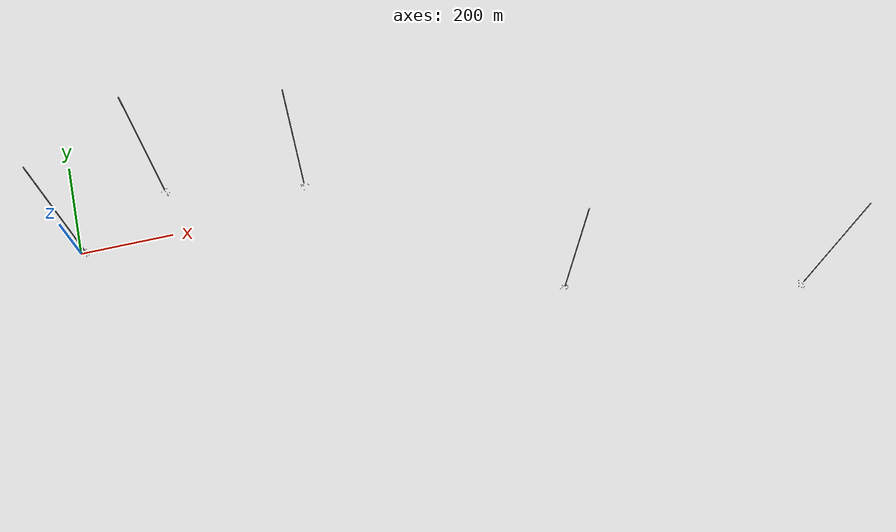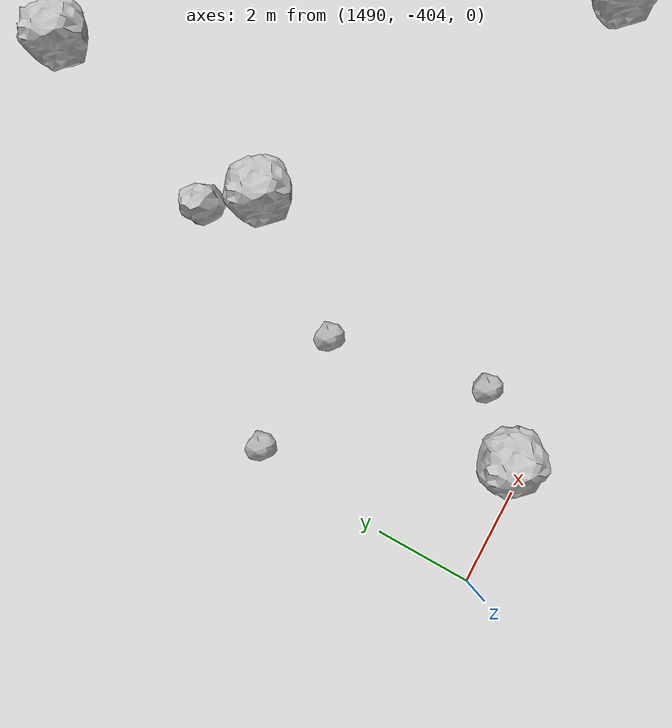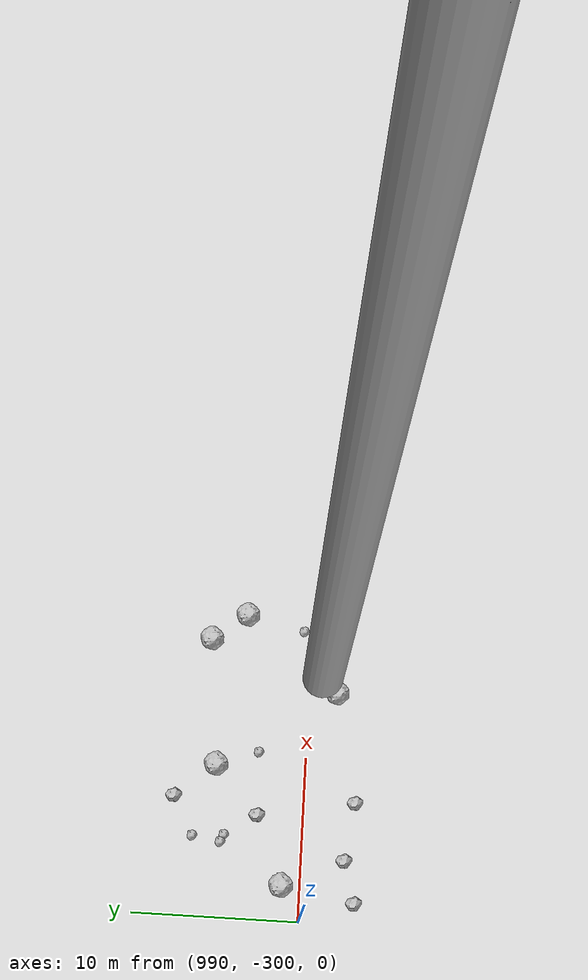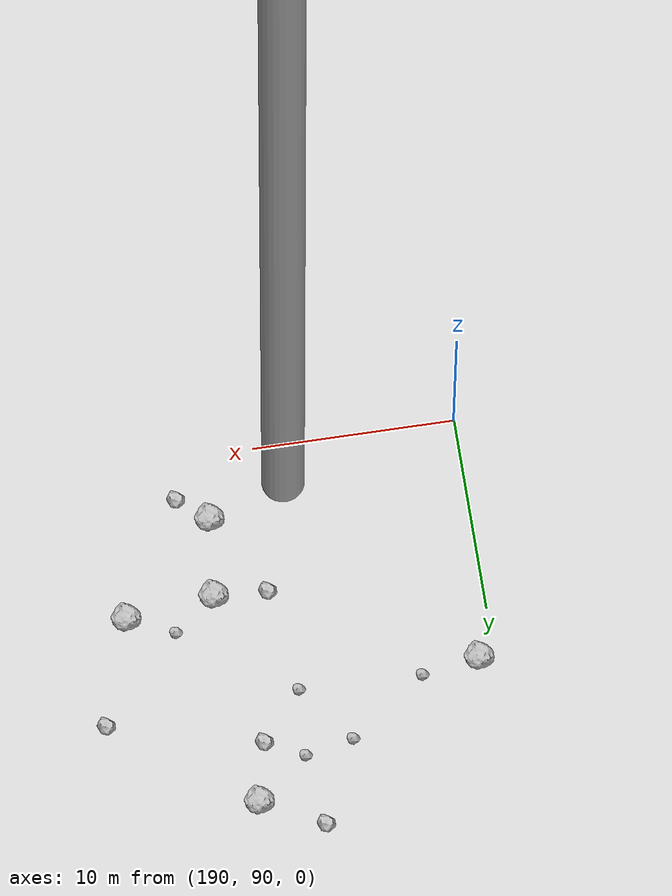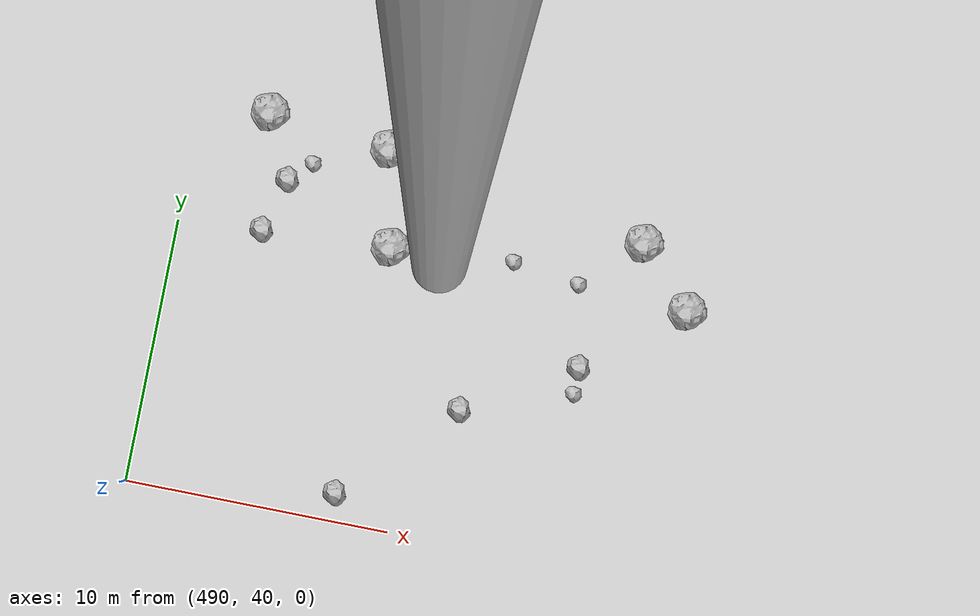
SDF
<?xml version="1.0" ?>
<sdf version="1.6">
  <world name="default">

    <include>
      <uri>model://custom_ground</uri>
    </include>

    <include>
      <uri>model://sun</uri>
    </include>

    <spherical_coordinates>
      <surface_model>EARTH_WGS84</surface_model>
      <latitude_deg>38.161479</latitude_deg>
      <longitude_deg>-122.454630</longitude_deg>
      <elevation>488.0</elevation>
      <heading_deg>90</heading_deg>
    </spherical_coordinates>

    <model name="rock1_0_0">
      <include>
        <uri>model://rock1</uri>
        <pose>10.112772071809616 -6.447188927637479 0.5 0 0 0</pose>
      </include>
    </model>
    <model name="rock1_0_1">
      <include>
        <uri>model://rock1</uri>
        <pose>10.09751659702841 -9.060804434885794 0.5 0 0 0</pose>
      </include>
    </model>
    <model name="rock1_0_2">
      <include>
        <uri>model://rock1</uri>
        <pose>7.254031194536057 6.864083342775746 0.5 0 0 0</pose>
      </include>
    </model>
    <model name="rock1_0_3">
      <include>
        <uri>model://rock1</uri>
        <pose>9.101606364139833 4.526395559051492 0.5 0 0 0</pose>
      </include>
    </model>
    <model name="rock1_0_4">
      <include>
        <uri>model://rock1</uri>
        <pose>10.940915018905962 -2.906637859956067 0.5 0 0 0</pose>
      </include>
    </model>
    <model name="rock2_0_0">
      <include>
        <uri>model://rock2</uri>
        <pose>8.505841886598226 -2.8649731465065305 0.3 0 0 0</pose>
      </include>
    </model>
    <model name="rock2_0_1">
      <include>
        <uri>model://rock2</uri>
        <pose>16.157191521470228 5.376292900140543 0.3 0 0 0</pose>
      </include>
    </model>
    <model name="rock2_0_2">
      <include>
        <uri>model://rock2</uri>
        <pose>3.475637964732843 -1.8105721797877656 0.3 0 0 0</pose>
      </include>
    </model>
    <model name="rock2_0_3">
      <include>
        <uri>model://rock2</uri>
        <pose>2.2443866586386574 3.6075314562543497 0.3 0 0 0</pose>
      </include>
    </model>
    <model name="rock2_0_4">
      <include>
        <uri>model://rock2</uri>
        <pose>16.145359024537 -6.5568361235678125 0.3 0 0 0</pose>
      </include>
    </model>
    <model name="rock3_0_0">
      <include>
        <uri>model://rock3</uri>
        <pose>15.28271791926488 -6.094916040856024 0.2 0 0 0</pose>
      </include>
    </model>
    <model name="rock3_0_1">
      <include>
        <uri>model://rock3</uri>
        <pose>15.016145092375659 3.8957788896681897 0.2 0 0 0</pose>
      </include>
    </model>
    <model name="rock3_0_2">
      <include>
        <uri>model://rock3</uri>
        <pose>10.85028890767135 8.480553956346494 0.2 0 0 0</pose>
      </include>
    </model>
    <model name="rock3_0_3">
      <include>
        <uri>model://rock3</uri>
        <pose>15.640488716743965 1.878839334508287 0.2 0 0 0</pose>
      </include>
    </model>
    <model name="rock3_0_4">
      <include>
        <uri>model://rock3</uri>
        <pose>10.505332328153553 -5.878959547804882 0.2 0 0 0</pose>
      </include>
    </model>
    <model name="rock1_1_0">
      <include>
        <uri>model://rock1</uri>
        <pose>203.05080069487883 97.45800247527008 0.5 0 0 0</pose>
      </include>
    </model>
    <model name="rock1_1_1">
      <include>
        <uri>model://rock1</uri>
        <pose>202.66010212911766 93.43920263872673 0.5 0 0 0</pose>
      </include>
    </model>
    <model name="rock1_1_2">
      <include>
        <uri>model://rock1</uri>
        <pose>190.7781682661523 102.55533646991199 0.5 0 0 0</pose>
      </include>
    </model>
    <model name="rock1_1_3">
      <include>
        <uri>model://rock1</uri>
        <pose>207.4354290111251 98.01180300476939 0.5 0 0 0</pose>
      </include>
    </model>
    <model name="rock1_1_4">
      <include>
        <uri>model://rock1</uri>
        <pose>202.44068076083525 108.33133774068284 0.5 0 0 0</pose>
      </include>
    </model>
    <model name="rock2_1_0">
      <include>
        <uri>model://rock2</uri>
        <pose>209.1821151335771 103.36905390759142 0.3 0 0 0</pose>
      </include>
    </model>
    <model name="rock2_1_1">
      <include>
        <uri>model://rock2</uri>
        <pose>204.13845895228877 92.16512561043949 0.3 0 0 0</pose>
      </include>
    </model>
    <model name="rock2_1_2">
      <include>
        <uri>model://rock2</uri>
        <pose>201.73849122529188 105.32171571186532 0.3 0 0 0</pose>
      </include>
    </model>
    <model name="rock2_1_3">
      <include>
        <uri>model://rock2</uri>
        <pose>200.40766958856122 97.56879509762433 0.3 0 0 0</pose>
      </include>
    </model>
    <model name="rock2_1_4">
      <include>
        <uri>model://rock2</uri>
        <pose>199.41307794513807 109.9027659641453 0.3 0 0 0</pose>
      </include>
    </model>
    <model name="rock3_1_0">
      <include>
        <uri>model://rock3</uri>
        <pose>205.12006253238422 98.99733032482895 0.2 0 0 0</pose>
      </include>
    </model>
    <model name="rock3_1_1">
      <include>
        <uri>model://rock3</uri>
        <pose>197.43252116290844 105.71673335213247 0.2 0 0 0</pose>
      </include>
    </model>
    <model name="rock3_1_2">
      <include>
        <uri>model://rock3</uri>
        <pose>199.64953018326005 102.80835510669664 0.2 0 0 0</pose>
      </include>
    </model>
    <model name="rock3_1_3">
      <include>
        <uri>model://rock3</uri>
        <pose>199.8331905460522 106.22485941569055 0.2 0 0 0</pose>
      </include>
    </model>
    <model name="rock3_1_4">
      <include>
        <uri>model://rock3</uri>
        <pose>193.606796838585 102.95289360392736 0.2 0 0 0</pose>
      </include>
    </model>
    <model name="rock1_2_0">
      <include>
        <uri>model://rock1</uri>
        <pose>497.3110535371176 54.171408908933415 0.5 0 0 0</pose>
      </include>
    </model>
    <model name="rock1_2_1">
      <include>
        <uri>model://rock1</uri>
        <pose>498.0580533942909 50.55171150403238 0.5 0 0 0</pose>
      </include>
    </model>
    <model name="rock1_2_2">
      <include>
        <uri>model://rock1</uri>
        <pose>509.4738542406899 50.36822673030129 0.5 0 0 0</pose>
      </include>
    </model>
    <model name="rock1_2_3">
      <include>
        <uri>model://rock1</uri>
        <pose>492.6355421767697 54.65418427280814 0.5 0 0 0</pose>
      </include>
    </model>
    <model name="rock1_2_4">
      <include>
        <uri>model://rock1</uri>
        <pose>507.38787084184435 52.55654740088213 0.5 0 0 0</pose>
      </include>
    </model>
    <model name="rock2_2_0">
      <include>
        <uri>model://rock2</uri>
        <pose>497.7821892830576 41.08679346461937 0.3 0 0 0</pose>
      </include>
    </model>
    <model name="rock2_2_1">
      <include>
        <uri>model://rock2</uri>
        <pose>501.7630625615508 45.0731408920903 0.3 0 0 0</pose>
      </include>
    </model>
    <model name="rock2_2_2">
      <include>
        <uri>model://rock2</uri>
        <pose>505.8569762186873 47.4988356760446 0.3 0 0 0</pose>
      </include>
    </model>
    <model name="rock2_2_3">
      <include>
        <uri>model://rock2</uri>
        <pose>493.7360144326078 52.305722610309154 0.3 0 0 0</pose>
      </include>
    </model>
    <model name="rock2_2_4">
      <include>
        <uri>model://rock2</uri>
        <pose>493.1480996700487 50.27300032112984 0.3 0 0 0</pose>
      </include>
    </model>
    <model name="rock3_2_0">
      <include>
        <uri>model://rock3</uri>
        <pose>502.6782088691028 50.89794660156376 0.2 0 0 0</pose>
      </include>
    </model>
    <model name="rock3_2_1">
      <include>
        <uri>model://rock3</uri>
        <pose>499.00204134153745 53.798938837596175 0.2 0 0 0</pose>
      </include>
    </model>
    <model name="rock3_2_2">
      <include>
        <uri>model://rock3</uri>
        <pose>505.2347317762983 50.53452732774307 0.2 0 0 0</pose>
      </include>
    </model>
    <model name="rock3_2_3">
      <include>
        <uri>model://rock3</uri>
        <pose>494.5586170601149 53.051897472839954 0.2 0 0 0</pose>
      </include>
    </model>
    <model name="rock3_2_4">
      <include>
        <uri>model://rock3</uri>
        <pose>505.85612056057795 46.45983453223195 0.2 0 0 0</pose>
      </include>
    </model>
    <model name="rock1_3_0">
      <include>
        <uri>model://rock1</uri>
        <pose>992.1638076293362 -298.81347765133603 0.5 0 0 0</pose>
      </include>
    </model>
    <model name="rock1_3_1">
      <include>
        <uri>model://rock1</uri>
        <pose>999.3238319349773 -294.50456298138266 0.5 0 0 0</pose>
      </include>
    </model>
    <model name="rock1_3_2">
      <include>
        <uri>model://rock1</uri>
        <pose>1004.16582646206 -301.70169653683047 0.5 0 0 0</pose>
      </include>
    </model>
    <model name="rock1_3_3">
      <include>
        <uri>model://rock1</uri>
        <pose>1007.2370417291569 -293.7779765636147 0.5 0 0 0</pose>
      </include>
    </model>
    <model name="rock1_3_4">
      <include>
        <uri>model://rock1</uri>
        <pose>1008.8874644830241 -295.92918403612555 0.5 0 0 0</pose>
      </include>
    </model>
    <model name="rock2_3_0">
      <include>
        <uri>model://rock2</uri>
        <pose>991.3010269101151 -303.2109299605683 0.3 0 0 0</pose>
      </include>
    </model>
    <model name="rock2_3_1">
      <include>
        <uri>model://rock2</uri>
        <pose>996.3227057935533 -297.15395393947506 0.3 0 0 0</pose>
      </include>
    </model>
    <model name="rock2_3_2">
      <include>
        <uri>model://rock2</uri>
        <pose>997.2610548847609 -292.0365771589535 0.3 0 0 0</pose>
      </include>
    </model>
    <model name="rock2_3_3">
      <include>
        <uri>model://rock2</uri>
        <pose>993.8214597561654 -302.5315863869183 0.3 0 0 0</pose>
      </include>
    </model>
    <model name="rock2_3_4">
      <include>
        <uri>model://rock2</uri>
        <pose>997.3645027852958 -303.0646197474111 0.3 0 0 0</pose>
      </include>
    </model>
    <model name="rock3_3_0">
      <include>
        <uri>model://rock3</uri>
        <pose>994.8610534885252 -293.32278225883334 0.2 0 0 0</pose>
      </include>
    </model>
    <model name="rock3_3_1">
      <include>
        <uri>model://rock3</uri>
        <pose>994.5644023007393 -295.03874336100773 0.2 0 0 0</pose>
      </include>
    </model>
    <model name="rock3_3_2">
      <include>
        <uri>model://rock3</uri>
        <pose>1008.0124913750112 -299.517664457887 0.2 0 0 0</pose>
      </include>
    </model>
    <model name="rock3_3_3">
      <include>
        <uri>model://rock3</uri>
        <pose>1000.1948410452156 -297.0939548249961 0.2 0 0 0</pose>
      </include>
    </model>
    <model name="rock3_3_4">
      <include>
        <uri>model://rock3</uri>
        <pose>994.9977013707673 -295.23185531628656 0.2 0 0 0</pose>
      </include>
    </model>
    <model name="rock1_4_0">
      <include>
        <uri>model://rock1</uri>
        <pose>1492.524008884189 -403.6180541044204 0.5 0 0 0</pose>
      </include>
    </model>
    <model name="rock1_4_1">
      <include>
        <uri>model://rock1</uri>
        <pose>1495.9325843944632 -390.96191009102773 0.5 0 0 0</pose>
      </include>
    </model>
    <model name="rock1_4_2">
      <include>
        <uri>model://rock1</uri>
        <pose>1503.7050820013417 -406.15793406790004 0.5 0 0 0</pose>
      </include>
    </model>
    <model name="rock1_4_3">
      <include>
        <uri>model://rock1</uri>
        <pose>1494.9929870266074 -396.4500251008121 0.5 0 0 0</pose>
      </include>
    </model>
    <model name="rock1_4_4">
      <include>
        <uri>model://rock1</uri>
        <pose>1502.607447163727 -401.13639078213066 0.5 0 0 0</pose>
      </include>
    </model>
    <model name="rock2_4_0">
      <include>
        <uri>model://rock2</uri>
        <pose>1497.8496462984428 -406.3098355373895 0.3 0 0 0</pose>
      </include>
    </model>
    <model name="rock2_4_1">
      <include>
        <uri>model://rock2</uri>
        <pose>1494.1919886904277 -395.4648770976687 0.3 0 0 0</pose>
      </include>
    </model>
    <model name="rock2_4_2">
      <include>
        <uri>model://rock2</uri>
        <pose>1501.8526050688756 -397.9559598748081 0.3 0 0 0</pose>
      </include>
    </model>
    <model name="rock2_4_3">
      <include>
        <uri>model://rock2</uri>
        <pose>1501.1632170246646 -408.50535281946077 0.3 0 0 0</pose>
      </include>
    </model>
    <model name="rock2_4_4">
      <include>
        <uri>model://rock2</uri>
        <pose>1504.1761631724603 -399.04237618843433 0.3 0 0 0</pose>
      </include>
    </model>
    <model name="rock3_4_0">
      <include>
        <uri>model://rock3</uri>
        <pose>1493.607910617533 -402.57085729616375 0.2 0 0 0</pose>
      </include>
    </model>
    <model name="rock3_4_1">
      <include>
        <uri>model://rock3</uri>
        <pose>1503.1286865527397 -395.9036953336335 0.2 0 0 0</pose>
      </include>
    </model>
    <model name="rock3_4_2">
      <include>
        <uri>model://rock3</uri>
        <pose>1492.987930986225 -399.2061435888823 0.2 0 0 0</pose>
      </include>
    </model>
    <model name="rock3_4_3">
      <include>
        <uri>model://rock3</uri>
        <pose>1504.8414820363196 -400.99312497121304 0.2 0 0 0</pose>
      </include>
    </model>
    <model name="rock3_4_4">
      <include>
        <uri>model://rock3</uri>
        <pose>1490.352266775044 -399.0744022817247 0.2 0 0 0</pose>
      </include>
    </model>

    <model name="cylinder_1">
      <static>true</static>
      <link name="link">
        <visual name="visual">
          <geometry>
            <cylinder>
              <radius>1</radius>
              <length>500</length>
            </cylinder>
          </geometry>
        </visual>
      </link>
      <pose>10 0 270 0 0 0</pose>
    </model>

    <model name="cylinder_2">
      <static>true</static>
      <link name="link">
        <visual name="visual">
          <geometry>
            <cylinder>
              <radius>1</radius>
              <length>500</length>
            </cylinder>
          </geometry>
        </visual>
      </link>
      <pose>200 100 270 0 0 0</pose>
    </model>

    <model name="cylinder_3">
      <static>true</static>
      <link name="link">
        <visual name="visual">
          <geometry>
            <cylinder>
              <radius>1</radius>
              <length>500</length>
            </cylinder>
          </geometry>
        </visual>
      </link>
      <pose>500 50 270 0 0 0</pose>
    </model>

    <model name="cylinder_4">
      <static>true</static>
      <link name="link">
        <visual name="visual">
          <geometry>
            <cylinder>
              <radius>1</radius>
              <length>500</length>
            </cylinder>
          </geometry>
        </visual>
      </link>
      <pose>1000 -300 270 0 0 0</pose>
    </model>

    <model name="cylinder_5">
      <static>true</static>
      <link name="link">
        <visual name="visual">
          <geometry>
            <cylinder>
              <radius>1</radius>
              <length>500</length>
            </cylinder>
          </geometry>
        </visual>
      </link>
      <pose>1500 -400 270 0 0 0</pose>
    </model>

  </world>
</sdf>

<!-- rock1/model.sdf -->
<sdf version="1.6">
  <model name="rock1">
    <static>true</static> <!-- Set to true if the model should not move -->
    <pose>0 0 0 0 0 0</pose>

    <!--z offset is 0.5 for full scale-->

    <link name="link">
      <collision name="rock1_collision">
        <geometry>
          <mesh>
            <uri>model://meshes/rock1.dae</uri>
          </mesh>
        </geometry>
      </collision>
      <visual name="rock1_visual">
        <geometry>
          <mesh>
            <uri>model://meshes/rock1.dae</uri>
          </mesh>
        </geometry>
        <material>
          <script>
            <uri>model://materials/scripts/sand_pebbles.material</uri>
            <name>custom_ground/Image</name>
          </script>
        </material>
      </visual>
    </link>
  </model>
</sdf>

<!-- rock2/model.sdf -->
<sdf version="1.6">
  <model name="rock2">
    <static>true</static> <!-- Set to true if the model should not move -->
    <pose>0 0 0 0 0 0</pose>

    <!--z offset is 0.3 for full scale-->

    <link name="link">
      <collision name="rock2_collision">
        <geometry>
          <mesh>
            <uri>model://meshes/rock2.dae</uri>
          </mesh>
        </geometry>
      </collision>
      <visual name="rock2_visual">
        <geometry>
          <mesh>
            <uri>model://meshes/rock2.dae</uri>
          </mesh>
        </geometry>
        <material>
          <script>
            <uri>model://materials/scripts/sand_pebbles.material</uri>
            <name>custom_ground/Image</name>
          </script>
        </material>
      </visual>
    </link>
  </model>
</sdf>

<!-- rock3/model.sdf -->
<sdf version="1.6">
  <model name="rock3">
    <static>true</static> <!-- Set to true if the model should not move -->
    <pose>0 0 0 0 0 0</pose>

    <!--z offset is 0.2 for full scale-->

    <link name="link">
      <collision name="rock3_collision">
        <geometry>
          <mesh>
            <uri>model://meshes/rock3.dae</uri>
          </mesh>
        </geometry>
      </collision>
      <visual name="rock3_visual">
        <geometry>
          <mesh>
            <uri>model://meshes/rock3.dae</uri>
          </mesh>
        </geometry>
        <material>
          <script>
            <uri>model://materials/scripts/sand_pebbles.material</uri>
            <name>custom_ground/Image</name>
          </script>
        </material>
      </visual>
    </link>
  </model>
</sdf>

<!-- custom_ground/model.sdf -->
<sdf version="1.6">
  <model name="custom_ground">
    <static>true</static> <!-- Ground is static and immovable -->
    <link name="ground_link">
      <pose>240 0 0 0 0 0</pose> <!-- Position and orientation relative to the world -->
      <!-- Visual Representation -->
      <visual name="ground_visual">
        <geometry>
          <plane>
            <normal>0 0 1</normal> <!-- Upward facing plane -->
            <size>500 500</size> <!-- Size of the plane -->
          </plane>
        </geometry>
        <material>
          <script>
            <uri>model://materials/scripts/sand_pebbles.material</uri>
            <name>custom_ground/Image</name>
          </script>
        </material>
      </visual>

      <!-- Collision Representation -->
      <collision name="ground_collision">
        <geometry>
          <plane>
            <normal>0 0 1</normal>
            <size>100 100</size>
          </plane>
        </geometry>
      </collision>

    </link>
  </model>
</sdf>
